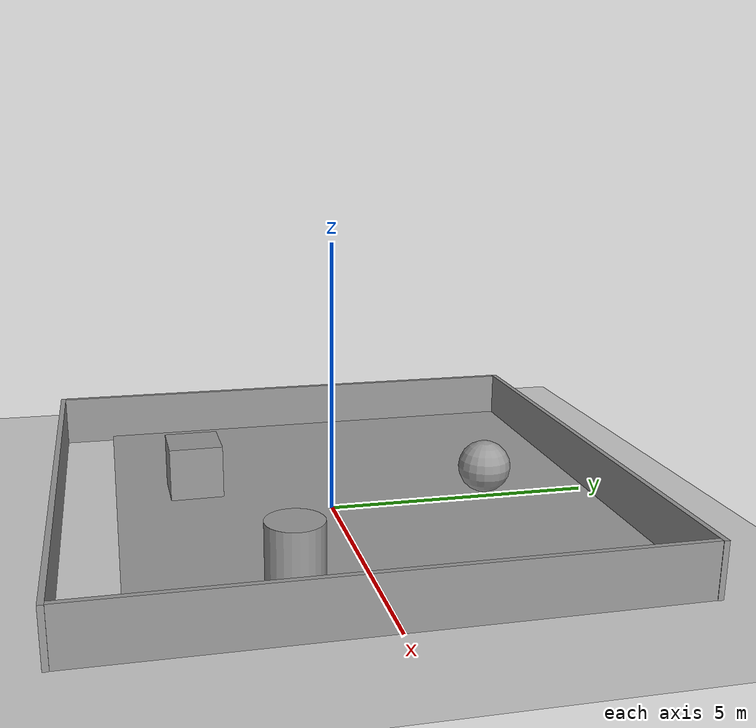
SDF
<sdf version="1.6">
 <world name="default">
  <light name="sun" type="directional">
   <pose>0 0 10 0 -0 0</pose>
   <diffuse>0.8 0.8 0.8 1</diffuse>
   <specular>0.2 0.2 0.2 1</specular>
   <attenuation>
    <range>1000</range>
    <constant>0.9</constant>
    <linear>0.01</linear>
    <quadratic>0.001</quadratic>
   </attenuation>
   <direction>-0.5 0.1 -0.9</direction>
  </light>
  <model name="ground_plane">
   <static>1</static>
   <link name="link">
    <collision name="collision">
     <geometry><plane><normal>0 0 1</normal><size>100 100</size></plane></geometry>
     <surface><friction><ode><mu>100</mu><mu2>50</mu2></ode></friction></surface>
    </collision>
    <visual name="visual">
     <cast_shadows>0</cast_shadows>
     <geometry><plane><normal>0 0 1</normal><size>100 100</size></plane></geometry>
     <material>
      <script><uri>file://media/materials/scripts/gazebo.material</uri><name>Gazebo/Grey</name></script>
     </material>
    </visual>
   </link>
  </model>
  <gravity>0 0 -9.8</gravity>
  <magnetic_field>6e-06 2.3e-05 -4.2e-05</magnetic_field>
  <atmosphere type="adiabatic"/>
  <physics name="default_physics" default="0" type="ode">
   <max_step_size>0.001</max_step_size>
   <real_time_factor>1</real_time_factor>
   <real_time_update_rate>1000</real_time_update_rate>
  </physics>
  <scene><ambient>0.4 0.4 0.4 1</ambient><background>0.7 0.7 0.7 1</background><shadows>1</shadows></scene>
  <audio><device>default</device></audio>
  <spherical_coordinates>
   <surface_model>EARTH_WGS84</surface_model>
   <latitude_deg>0</latitude_deg>
   <longitude_deg>0</longitude_deg>
   <elevation>0</elevation>
   <heading_deg>0</heading_deg>
  </spherical_coordinates>
  <model name="square">
   <link name="Wall_2">
    <pose>-0.45 5 0 0 -0 0</pose>
    <inertial>
     <mass>1</mass>
     <inertia><ixx>1</ixx><ixy>0</ixy><ixz>0</ixz><iyy>1</iyy><iyz>0</iyz><izz>1</izz></inertia>
    </inertial>
    <visual name="Wall_2_Visual">
     <pose>0 0 0.5 0 -0 0</pose>
     <geometry><box><size>10.1 0.1 1</size></box></geometry>
     <material>
      <script><uri>file://media/materials/scripts/gazebo.material</uri><name>Gazebo/Grey</name></script>
      <ambient>1 1 1 1</ambient>
      <shader type="vertex"><normal_map>__default__</normal_map></shader>
      <diffuse>0.7 0.7 0.7 1</diffuse>
      <specular>0.01 0.01 0.01 1</specular>
      <emissive>0 0 0 1</emissive>
     </material>
     <meta><layer>0</layer></meta>
    </visual>
    <collision name="Wall_2_Collision">
     <pose>0 0 0.5 0 -0 0</pose>
     <geometry><box><size>10.1 0.1 1</size></box></geometry>
     <surface>
      <friction>
       <ode><mu>1</mu><mu2>1</mu2><fdir1>0 0 0</fdir1><slip1>0</slip1><slip2>0</slip2></ode>
       <torsional>
        <coefficient>1</coefficient>
        <patch_radius>0</patch_radius>
        <surface_radius>0</surface_radius>
        <use_patch_radius>1</use_patch_radius>
        <ode><slip>0</slip></ode>
       </torsional>
      </friction>
      <bounce><restitution_coefficient>0</restitution_coefficient><threshold>1e+06</threshold></bounce>
      <contact>
       <collide_without_contact>0</collide_without_contact>
       <collide_without_contact_bitmask>1</collide_without_contact_bitmask>
       <collide_bitmask>1</collide_bitmask>
       <ode>
        <soft_cfm>0</soft_cfm>
        <soft_erp>0.2</soft_erp>
        <kp>1e+13</kp>
        <kd>1</kd>
        <max_vel>0.01</max_vel>
        <min_depth>0</min_depth>
       </ode>
       <bullet>
        <split_impulse>1</split_impulse>
        <split_impulse_penetration_threshold>-0.01</split_impulse_penetration_threshold>
        <soft_cfm>0</soft_cfm>
        <soft_erp>0.2</soft_erp>
        <kp>1e+13</kp>
        <kd>1</kd>
       </bullet>
      </contact>
     </surface>
    </collision>
   </link>
   <link name="Wall_5">
    <pose>4.54 -0.05 0 0 0 -1.5708</pose>
    <inertial>
     <mass>1</mass>
     <inertia><ixx>1</ixx><ixy>0</ixy><ixz>0</ixz><iyy>1</iyy><iyz>0</iyz><izz>1</izz></inertia>
    </inertial>
    <visual name="Wall_5_Visual">
     <pose>0 0 0.5 0 -0 0</pose>
     <geometry><box><size>10 0.1 1</size></box></geometry>
     <material>
      <script><uri>file://media/materials/scripts/gazebo.material</uri><name>Gazebo/Grey</name></script>
      <ambient>1 1 1 1</ambient>
      <shader type="vertex"><normal_map>__default__</normal_map></shader>
      <diffuse>0.7 0.7 0.7 1</diffuse>
      <specular>0.01 0.01 0.01 1</specular>
      <emissive>0 0 0 1</emissive>
     </material>
     <meta><layer>0</layer></meta>
    </visual>
    <collision name="Wall_5_Collision">
     <pose>0 0 0.5 0 -0 0</pose>
     <geometry><box><size>10 0.1 1</size></box></geometry>
     <surface>
      <friction>
       <ode><mu>1</mu><mu2>1</mu2><fdir1>0 0 0</fdir1><slip1>0</slip1><slip2>0</slip2></ode>
       <torsional>
        <coefficient>1</coefficient>
        <patch_radius>0</patch_radius>
        <surface_radius>0</surface_radius>
        <use_patch_radius>1</use_patch_radius>
        <ode><slip>0</slip></ode>
       </torsional>
      </friction>
      <bounce><restitution_coefficient>0</restitution_coefficient><threshold>1e+06</threshold></bounce>
      <contact>
       <collide_without_contact>0</collide_without_contact>
       <collide_without_contact_bitmask>1</collide_without_contact_bitmask>
       <collide_bitmask>1</collide_bitmask>
       <ode>
        <soft_cfm>0</soft_cfm>
        <soft_erp>0.2</soft_erp>
        <kp>1e+13</kp>
        <kd>1</kd>
        <max_vel>0.01</max_vel>
        <min_depth>0</min_depth>
       </ode>
       <bullet>
        <split_impulse>1</split_impulse>
        <split_impulse_penetration_threshold>-0.01</split_impulse_penetration_threshold>
        <soft_cfm>0</soft_cfm>
        <soft_erp>0.2</soft_erp>
        <kp>1e+13</kp>
        <kd>1</kd>
       </bullet>
      </contact>
     </surface>
    </collision>
   </link>
   <link name="Wall_6">
    <pose>-0.45 -5.1 0 0 -0 3.14159</pose>
    <inertial>
     <mass>1</mass>
     <inertia><ixx>1</ixx><ixy>0</ixy><ixz>0</ixz><iyy>1</iyy><iyz>0</iyz><izz>1</izz></inertia>
    </inertial>
    <visual name="Wall_6_Visual">
     <pose>0 0 0.5 0 -0 0</pose>
     <geometry><box><size>10.1 0.1 1</size></box></geometry>
     <material>
      <script><uri>file://media/materials/scripts/gazebo.material</uri><name>Gazebo/Grey</name></script>
      <ambient>1 1 1 1</ambient>
      <shader type="vertex"><normal_map>__default__</normal_map></shader>
      <diffuse>0.7 0.7 0.7 1</diffuse>
      <specular>0.01 0.01 0.01 1</specular>
      <emissive>0 0 0 1</emissive>
     </material>
     <meta><layer>0</layer></meta>
    </visual>
    <collision name="Wall_6_Collision">
     <pose>0 0 0.5 0 -0 0</pose>
     <geometry><box><size>10.1 0.1 1</size></box></geometry>
     <surface>
      <friction>
       <ode><mu>1</mu><mu2>1</mu2><fdir1>0 0 0</fdir1><slip1>0</slip1><slip2>0</slip2></ode>
       <torsional>
        <coefficient>1</coefficient>
        <patch_radius>0</patch_radius>
        <surface_radius>0</surface_radius>
        <use_patch_radius>1</use_patch_radius>
        <ode><slip>0</slip></ode>
       </torsional>
      </friction>
      <bounce><restitution_coefficient>0</restitution_coefficient><threshold>1e+06</threshold></bounce>
      <contact>
       <collide_without_contact>0</collide_without_contact>
       <collide_without_contact_bitmask>1</collide_without_contact_bitmask>
       <collide_bitmask>1</collide_bitmask>
       <ode>
        <soft_cfm>0</soft_cfm>
        <soft_erp>0.2</soft_erp>
        <kp>1e+13</kp>
        <kd>1</kd>
        <max_vel>0.01</max_vel>
        <min_depth>0</min_depth>
       </ode>
       <bullet>
        <split_impulse>1</split_impulse>
        <split_impulse_penetration_threshold>-0.01</split_impulse_penetration_threshold>
        <soft_cfm>0</soft_cfm>
        <soft_erp>0.2</soft_erp>
        <kp>1e+13</kp>
        <kd>1</kd>
       </bullet>
      </contact>
     </surface>
    </collision>
   </link>
   <link name="Wall_7">
    <pose>-5.45 -0.06 0 0 -0 1.5708</pose>
    <inertial>
     <mass>1</mass>
     <inertia><ixx>1</ixx><ixy>0</ixy><ixz>0</ixz><iyy>1</iyy><iyz>0</iyz><izz>1</izz></inertia>
    </inertial>
    <visual name="Wall_7_Visual">
     <pose>0 0 0.5 0 -0 0</pose>
     <geometry><box><size>10 0.1 1</size></box></geometry>
     <material>
      <script><uri>file://media/materials/scripts/gazebo.material</uri><name>Gazebo/Grey</name></script>
      <ambient>1 1 1 1</ambient>
      <shader type="vertex"><normal_map>__default__</normal_map></shader>
      <diffuse>0.7 0.7 0.7 1</diffuse>
      <specular>0.01 0.01 0.01 1</specular>
      <emissive>0 0 0 1</emissive>
     </material>
     <meta><layer>0</layer></meta>
    </visual>
    <collision name="Wall_7_Collision">
     <pose>0 0 0.5 0 -0 0</pose>
     <geometry><box><size>10 0.1 1</size></box></geometry>
     <surface>
      <friction>
       <ode><mu>1</mu><mu2>1</mu2><fdir1>0 0 0</fdir1><slip1>0</slip1><slip2>0</slip2></ode>
       <torsional>
        <coefficient>1</coefficient>
        <patch_radius>0</patch_radius>
        <surface_radius>0</surface_radius>
        <use_patch_radius>1</use_patch_radius>
        <ode><slip>0</slip></ode>
       </torsional>
      </friction>
      <bounce><restitution_coefficient>0</restitution_coefficient><threshold>1e+06</threshold></bounce>
      <contact>
       <collide_without_contact>0</collide_without_contact>
       <collide_without_contact_bitmask>1</collide_without_contact_bitmask>
       <collide_bitmask>1</collide_bitmask>
       <ode>
        <soft_cfm>0</soft_cfm>
        <soft_erp>0.2</soft_erp>
        <kp>1e+13</kp>
        <kd>1</kd>
        <max_vel>0.01</max_vel>
        <min_depth>0</min_depth>
       </ode>
       <bullet>
        <split_impulse>1</split_impulse>
        <split_impulse_penetration_threshold>-0.01</split_impulse_penetration_threshold>
        <soft_cfm>0</soft_cfm>
        <soft_erp>0.2</soft_erp>
        <kp>1e+13</kp>
        <kd>1</kd>
       </bullet>
      </contact>
     </surface>
    </collision>
   </link>
   <static>1</static>
   <pose>0.389041 0.07875 0 0 -0 0</pose>
  </model>
  <model name="unit_cylinder">
   <pose>2.99282 -1.23266 0.572037 0.002095 0.004216 -0.003806</pose>
   <link name="link">
    <inertial>
     <mass>1</mass>
     <inertia><ixx>0.145833</ixx><ixy>0</ixy><ixz>0</ixz><iyy>0.145833</iyy><iyz>0</iyz><izz>0.125</izz></inertia>
    </inertial>
    <collision name="collision">
     <geometry><cylinder><radius>0.5</radius><length>1</length></cylinder></geometry>
    </collision>
    <visual name="visual">
     <geometry><cylinder><radius>0.5</radius><length>1</length></cylinder></geometry>
     <material>
      <script><name>Gazebo/Grey</name><uri>file://media/materials/scripts/gazebo.material</uri></script>
     </material>
    </visual>
   </link>
  </model>
  <model name="unit_sphere">
   <pose>-0.033083 3.01838 0.599969 -0.000594 0.014206 -0.000435</pose>
   <link name="link">
    <inertial>
     <mass>1</mass>
     <inertia><ixx>0.1</ixx><ixy>0</ixy><ixz>0</ixz><iyy>0.1</iyy><iyz>0</iyz><izz>0.1</izz></inertia>
    </inertial>
    <collision name="collision"><geometry><sphere><radius>0.5</radius></sphere></geometry></collision>
    <visual name="visual">
     <geometry><sphere><radius>0.5</radius></sphere></geometry>
     <material>
      <script><name>Gazebo/Grey</name><uri>file://media/materials/scripts/gazebo.material</uri></script>
     </material>
    </visual>
   </link>
  </model>
  <model name="unit_box">
   <pose>-1.23787 -2.4701 0.599986 3e-06 -1.1e-05 0.021214</pose>
   <link name="link">
    <inertial>
     <mass>1</mass>
     <inertia>
      <ixx>0.166667</ixx>
      <ixy>0</ixy>
      <ixz>0</ixz>
      <iyy>0.166667</iyy>
      <iyz>0</iyz>
      <izz>0.166667</izz>
     </inertia>
    </inertial>
    <collision name="collision"><geometry><box><size>1 1 1</size></box></geometry></collision>
    <visual name="visual">
     <geometry><box><size>1 1 1</size></box></geometry>
     <material>
      <script><name>Gazebo/Grey</name><uri>file://media/materials/scripts/gazebo.material</uri></script>
     </material>
    </visual>
   </link>
  </model>
  <model name="floor">
   <link name="link_0">
    <inertial>
     <mass>1</mass>
     <inertia><ixx>6.75083</ixx><ixy>0</ixy><ixz>0</ixz><iyy>6.75083</iyy><iyz>0</iyz><izz>13.5</izz></inertia>
    </inertial>
    <visual name="visual">
     <pose>0 0 0 0 0 -0.005</pose>
     <geometry><box><size>9 9 0.1</size></box></geometry>
     <material>
      <lighting>1</lighting>
      <script><uri>file://media/materials/scripts/gazebo.material</uri><name>Gazebo/Grey</name></script>
      <shader type="vertex"><normal_map>__default__</normal_map></shader>
      <ambient>0.3 0.3 0.3 1</ambient>
      <diffuse>0.7 0.7 0.7 1</diffuse>
      <specular>0.01 0.01 0.01 1</specular>
      <emissive>0 0 0 1</emissive>
     </material>
    </visual>
    <collision name="collision">
     <pose>0 0 0 0 0 -0.005</pose>
     <geometry><box><size>9 9 0.1</size></box></geometry>
     <surface>
      <friction>
       <ode><mu>100</mu><mu2>50</mu2><fdir1>0 0 0</fdir1><slip1>0</slip1><slip2>0</slip2></ode>
       <torsional>
        <coefficient>1</coefficient>
        <patch_radius>0</patch_radius>
        <surface_radius>0</surface_radius>
        <use_patch_radius>1</use_patch_radius>
        <ode><slip>0</slip></ode>
       </torsional>
      </friction>
      <bounce><restitution_coefficient>0</restitution_coefficient><threshold>1e+06</threshold></bounce>
      <contact>
       <collide_without_contact>0</collide_without_contact>
       <collide_without_contact_bitmask>1</collide_without_contact_bitmask>
       <collide_bitmask>1</collide_bitmask>
       <ode>
        <soft_cfm>0</soft_cfm>
        <soft_erp>0.2</soft_erp>
        <kp>1e+13</kp>
        <kd>1</kd>
        <max_vel>0.01</max_vel>
        <min_depth>0</min_depth>
       </ode>
       <bullet>
        <split_impulse>1</split_impulse>
        <split_impulse_penetration_threshold>-0.01</split_impulse_penetration_threshold>
        <soft_cfm>0</soft_cfm>
        <soft_erp>0.2</soft_erp>
        <kp>1e+13</kp>
        <kd>1</kd>
       </bullet>
      </contact>
     </surface>
    </collision>
   </link>
   <static>0</static>
   <pose>-0.500408 0.519355 0.039852 0.002074 0.004061 0.007091</pose>
  </model>
 </world>
</sdf>
